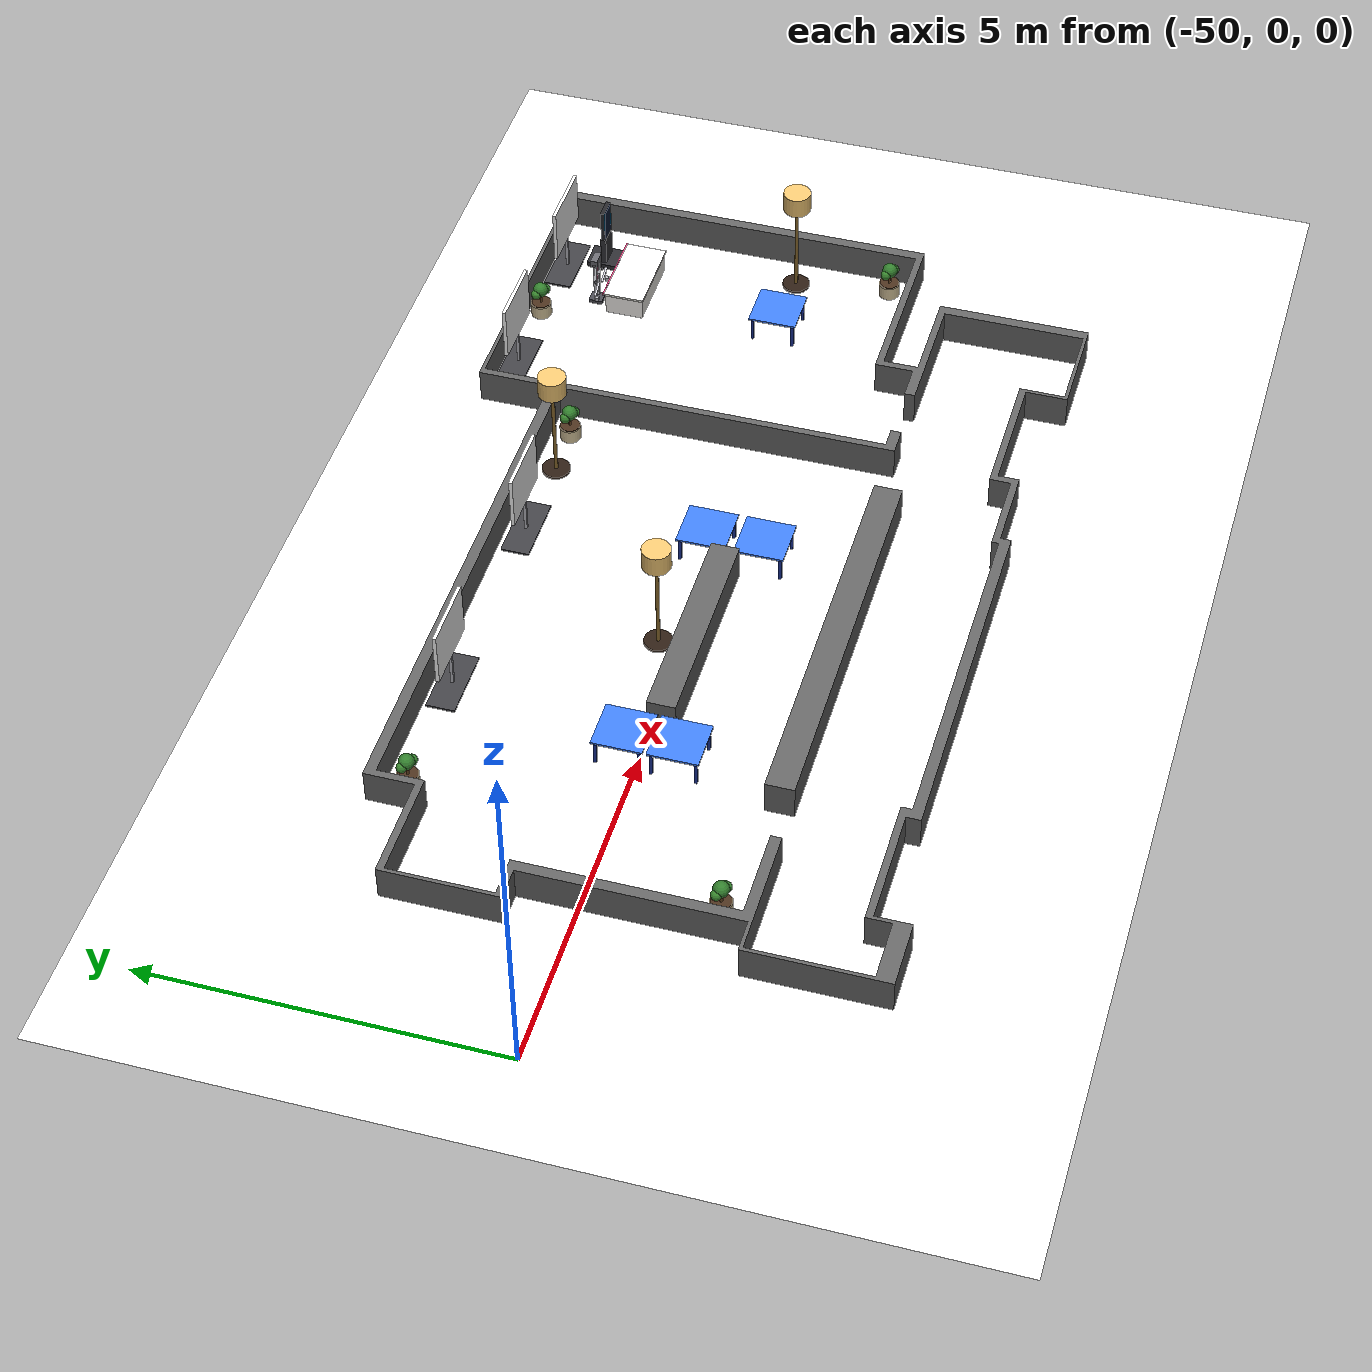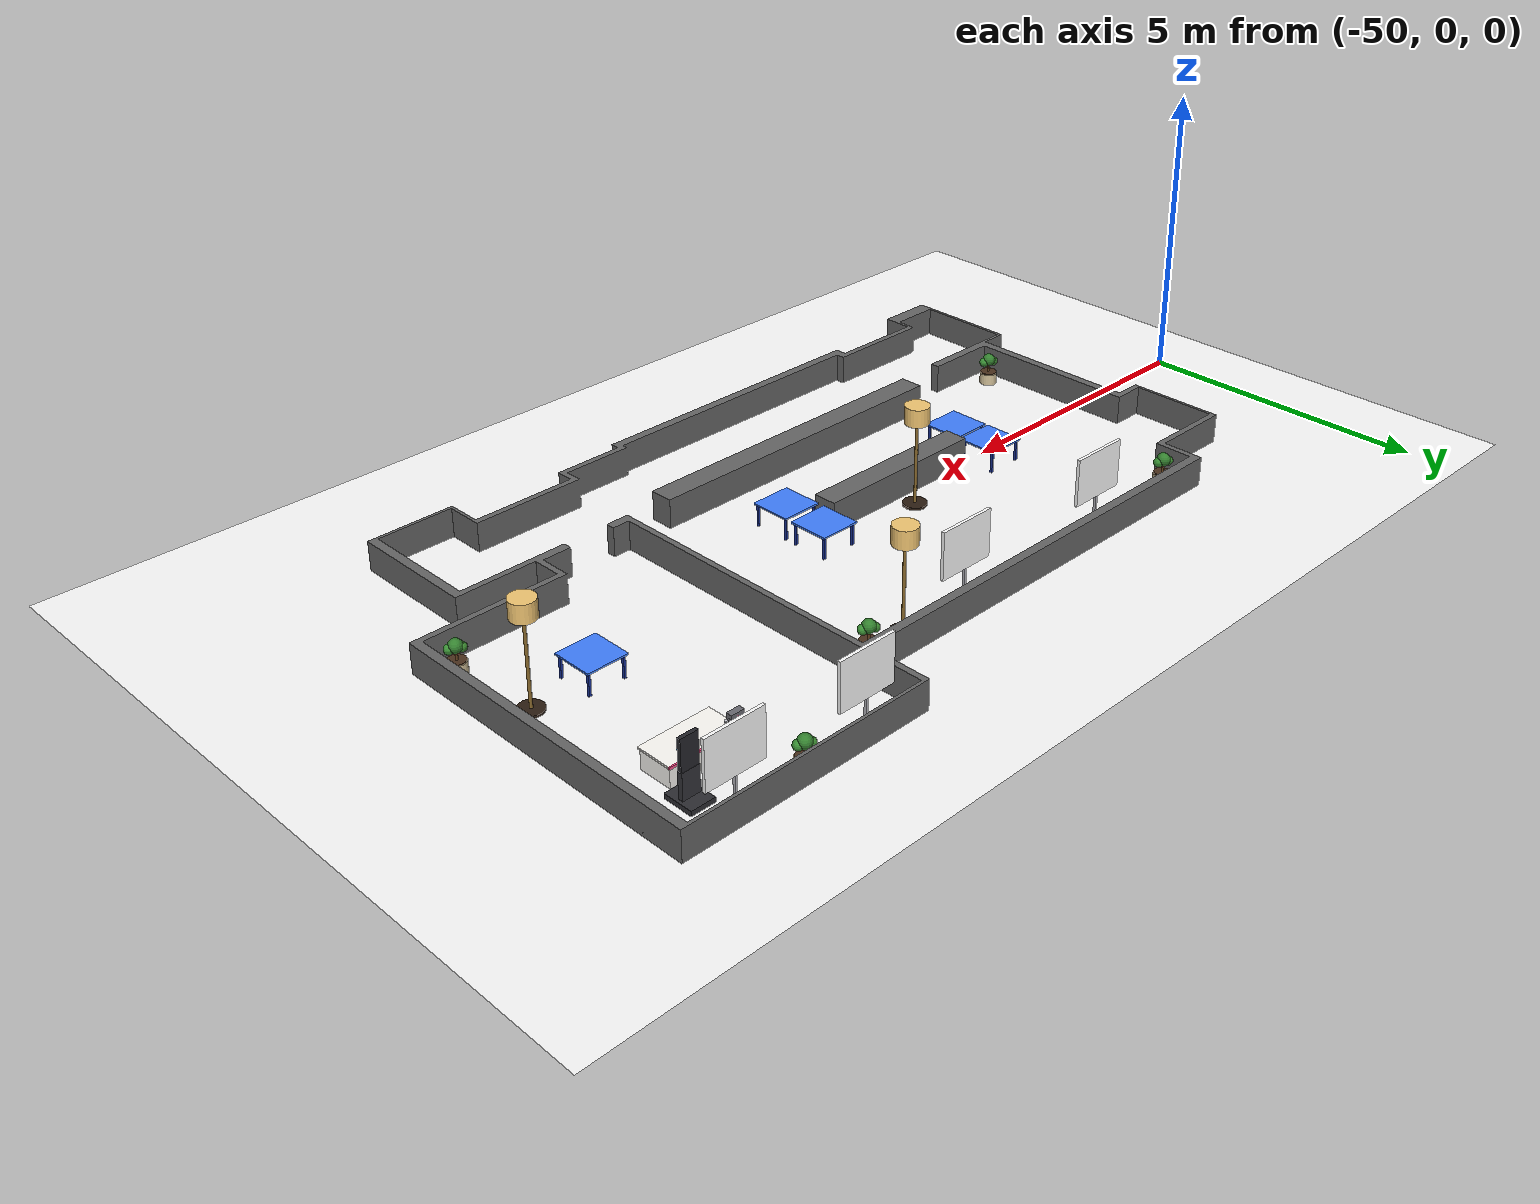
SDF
<?xml version="1.0" ?>
<sdf version="1.7">
  <world name="mapv5_moca">
    <plugin filename="gz-sim-physics-system" name="gz::sim::systems::Physics"/>
    <plugin filename="gz-sim-sensors-system" name="gz::sim::systems::Sensors">
      <render_engine>ogre2</render_engine>
    </plugin>
    <plugin filename="gz-sim-user-commands-system" name="gz::sim::systems::UserCommands"/>
    <plugin filename="gz-sim-scene-broadcaster-system" name="gz::sim::systems::SceneBroadcaster"/>
    <plugin filename="gz-sim-imu-system" name="gz::sim::systems::Imu"/>

    <scene>
      <ambient>0.5 0.5 0.5 1</ambient>
      <background>0.8 0.8 0.8</background>
      <grid>false</grid>
    </scene>

    <gui fullscreen="0">
      <plugin filename="MinimalScene" name="3D View">
        <gz-gui>
          <title>3D View</title>
          <property type="bool" key="showTitleBar">false</property>
          <property type="string" key="state">docked</property>
        </gz-gui>
        <ambient_light>0.5 0.5 0.5</ambient_light>
        <background_color>0.8 0.8 0.8</background_color>
        <camera_pose>-41.545 -0.374 18 0 1.5708 0</camera_pose>
        <camera_clip>
          <near>0.25</near>
          <far>250</far>
        </camera_clip>
        <engine>ogre2</engine>
        <scene>scene</scene>
        <sky>true</sky>
      </plugin>

      <plugin filename="GzSceneManager" name="Scene Manager">
        <gz-gui>
          <property key="resizable" type="bool">false</property>
          <property key="width" type="double">5</property>
          <property key="height" type="double">5</property>
          <property key="state" type="string">floating</property>
          <property key="showTitleBar" type="bool">false</property>
        </gz-gui>
      </plugin>

      <plugin filename="InteractiveViewControl" name="Interactive view control">
        <gz-gui>
          <property key="resizable" type="bool">false</property>
          <property key="width" type="double">5</property>
          <property key="height" type="double">5</property>
          <property key="state" type="string">floating</property>
          <property key="showTitleBar" type="bool">false</property>
        </gz-gui>
      </plugin>

      <plugin filename="CameraTracking" name="Camera Tracking">
        <gz-gui>
          <property key="resizable" type="bool">false</property>
          <property key="width" type="double">5</property>
          <property key="height" type="double">5</property>
          <property key="state" type="string">floating</property>
          <property key="showTitleBar" type="bool">false</property>
        </gz-gui>
      </plugin>

      <plugin filename="MarkerManager" name="Marker manager">
        <gz-gui>
          <property key="resizable" type="bool">false</property>
          <property key="width" type="double">5</property>
          <property key="height" type="double">5</property>
          <property key="state" type="string">floating</property>
          <property key="showTitleBar" type="bool">false</property>
        </gz-gui>
      </plugin>

      <plugin filename="SelectEntities" name="Select Entities">
        <gz-gui>
          <property key="resizable" type="bool">false</property>
          <property key="width" type="double">5</property>
          <property key="height" type="double">5</property>
          <property key="state" type="string">floating</property>
          <property key="showTitleBar" type="bool">false</property>
        </gz-gui>
      </plugin>

      <plugin filename="Spawn" name="Spawn Entities">
        <gz-gui>
          <property key="resizable" type="bool">false</property>
          <property key="width" type="double">5</property>
          <property key="height" type="double">5</property>
          <property key="state" type="string">floating</property>
          <property key="showTitleBar" type="bool">false</property>
        </gz-gui>
      </plugin>

      <plugin filename="VisualizationCapabilities" name="Visualization Capabilities">
        <gz-gui>
          <property key="resizable" type="bool">false</property>
          <property key="width" type="double">5</property>
          <property key="height" type="double">5</property>
          <property key="state" type="string">floating</property>
          <property key="showTitleBar" type="bool">false</property>
        </gz-gui>
      </plugin>

      <plugin filename="WorldControl" name="World control">
        <gz-gui>
          <title>World control</title>
          <property type="bool" key="showTitleBar">false</property>
          <property type="bool" key="resizable">false</property>
          <property type="double" key="height">72</property>
          <property type="double" key="width">121</property>
          <property type="double" key="z">1</property>
          <property type="string" key="state">floating</property>
          <anchors target="3D View">
            <line own="left" target="left"/>
            <line own="bottom" target="bottom"/>
          </anchors>
        </gz-gui>
        <play_pause>true</play_pause>
        <step>true</step>
        <start_paused>false</start_paused>
        <service>/world/mapv5_moca/control</service>
        <stats_topic>/world/mapv5_moca/stats</stats_topic>
      </plugin>

      <plugin filename="WorldStats" name="World stats">
        <gz-gui>
          <title>World stats</title>
          <property type="bool" key="showTitleBar">false</property>
          <property type="bool" key="resizable">false</property>
          <property type="double" key="height">110</property>
          <property type="double" key="width">290</property>
          <property type="double" key="z">1</property>
          <property type="string" key="state">floating</property>
          <anchors target="3D View">
            <line own="right" target="right"/>
            <line own="bottom" target="bottom"/>
          </anchors>
        </gz-gui>
        <sim_time>true</sim_time>
        <real_time>true</real_time>
        <real_time_factor>true</real_time_factor>
        <iterations>true</iterations>
        <topic>/world/mapv5_moca/stats</topic>
      </plugin>

      <plugin filename="EntityTree" name="Entity tree"/>
    </gui>

    <light type="directional" name="sun">
      <cast_shadows>true</cast_shadows>
      <pose>-41.545 -0.374 10 0 0 0</pose>
      <diffuse>1 1 1 1</diffuse>
      <specular>0.2 0.2 0.2 1</specular>
      <attenuation>
        <range>1000</range>
        <constant>0.09</constant>
        <linear>0.001</linear>
        <quadratic>0.001</quadratic>
      </attenuation>
      <direction>-0.3 -0.3 -0.9</direction>
    </light>

    <light type="point" name="lamp_main_1">
      <pose>-48.625 -0.025 2.5 0 0 0</pose>
      <diffuse>0.95 0.92 0.85 1</diffuse>
      <specular>0.1 0.1 0.1 1</specular>
      <attenuation>
        <range>12</range>
        <constant>0.5</constant>
        <linear>0.05</linear>
        <quadratic>0.005</quadratic>
      </attenuation>
      <cast_shadows>false</cast_shadows>
    </light>

    <light type="point" name="lamp_main_2">
      <pose>-39.625 2.975 2.5 0 0 0</pose>
      <diffuse>0.95 0.92 0.85 1</diffuse>
      <specular>0.1 0.1 0.1 1</specular>
      <attenuation>
        <range>12</range>
        <constant>0.5</constant>
        <linear>0.05</linear>
        <quadratic>0.005</quadratic>
      </attenuation>
      <cast_shadows>false</cast_shadows>
    </light>

    <include>
      <name>L01</name>
      <uri>model://floor_lamp</uri>
      <pose>-35.300 0.526 0 0 0 0</pose>
    </include>

    <!-- floor 19.55 x 12.50 m, light gray dotted grid PBR texture -->
    <include>
      <uri>model://floor_grid</uri>
      <pose>-41.545 -0.374 -0.01 0 0 0</pose>
    </include>

    <include>
      <uri>model://mapv5</uri>
      <pose>-51.320 -6.624 0 0 0 0</pose>
    </include>

    <!-- bar_counter (yaml: prep_station) - 카운터 + OpenARM 베이스 -->
    <include>
      <name>bar_counter</name>
      <uri>model://bar_counter</uri>
      <pose>-36.070 2.793 0 0 0 3.142</pose>
    </include>

    <!-- OpenARM - bar_counter 옆, floor 위 직립 (z=0.89 = 카운터 상판 위) -->
    <include>
      <name>open_arm</name>
      <uri>model://open_arm</uri>
      <pose>-36.420 3.276 0 0 0 3.142</pose>
    </include>

    <!-- kiosk - 셀프 주문 단말 (+x 방향 = 화면면, yaml 동기화) -->
    <include>
      <name>kiosk</name>
      <uri>model://kiosk</uri>
      <pose>-35.520 3.409 0 0 0 -1.571</pose>
    </include>

    <!-- vicpinky_home - 모델 미신설, 좌표만 기록 (후속: dock plate 모델)
         pose: x=-36.920 y=2.843 yaw=-1.570
    -->

    <!-- 고객 테이블 T01~T05 - cafe_layout.yaml (yaw=0 통일, waypoint heading 후속 도출) -->
    <include>
      <name>T01</name>
      <uri>model://cafe_table</uri>
      <pose>-36.337 0.526 0 0 0 0</pose>
    </include>
    <include>
      <name>T02</name>
      <uri>model://cafe_table</uri>
      <pose>-41.037 0.243 0 0 0 0</pose>
    </include>
    <include>
      <name>T03</name>
      <uri>model://cafe_table</uri>
      <pose>-41.037 -0.574 0 0 0 0</pose>
    </include>
    <include>
      <name>T04</name>
      <uri>model://cafe_table</uri>
      <pose>-44.903 0.243 0 0 0 0</pose>
    </include>
    <include>
      <name>T05</name>
      <uri>model://cafe_table</uri>
      <pose>-44.903 -0.507 0 0 0 0</pose>
    </include>

    <!-- 광고 배너 B01~B04 — roll-up 자립 (+x = 광고면). cafe_layout.yaml banners 섹션 동기화 -->
    <include>
      <name>B01</name>
      <uri>model://banner</uri>
      <pose>-38.053 3.959 0 0 0 -1.571</pose>
    </include>
    <include>
      <name>B02</name>
      <uri>model://banner</uri>
      <pose>-35.787 3.943 0 0 0 -1.571</pose>
    </include>
    <include>
      <name>B03</name>
      <uri>model://banner</uri>
      <pose>-41.353 2.759 0 0 0 -1.571</pose>
    </include>
    <include>
      <name>B04</name>
      <uri>model://banner</uri>
      <pose>-44.387 2.776 0 0 0 -1.571</pose>
    </include>

    <!-- 스탠드형 전등 추가 L02~L03 — picker 배치 동기화 (L01 은 위에 별도) -->
    <include>
      <name>L02</name>
      <uri>model://floor_lamp</uri>
      <pose>-40.103 2.726 0 0 0 3.142</pose>
    </include>
    <include>
      <name>L03</name>
      <uri>model://floor_lamp</uri>
      <pose>-42.937 0.376 0 0 0 3.142</pose>
    </include>

    <!-- 분재 P01~P05 — picker 배치 동기화. cafe_layout.yaml plants 섹션 -->
    <include>
      <name>P01</name>
      <uri>model://bonsai_tree</uri>
      <pose>-39.387 2.743 0 0 0 3.142</pose>
    </include>
    <include>
      <name>P02</name>
      <uri>model://bonsai_tree</uri>
      <pose>-46.237 2.726 0 0 0 3.142</pose>
    </include>
    <include>
      <name>P03</name>
      <uri>model://bonsai_tree</uri>
      <pose>-47.170 -1.707 0 0 0 3.142</pose>
    </include>
    <include>
      <name>P04</name>
      <uri>model://bonsai_tree</uri>
      <pose>-35.120 -0.857 0 0 0 3.142</pose>
    </include>
    <include>
      <name>P05</name>
      <uri>model://bonsai_tree</uri>
      <pose>-36.937 3.976 0 0 0 3.142</pose>
    </include>

  </world>
</sdf>

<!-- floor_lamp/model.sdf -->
<sdf version="1.7">
  <model name="floor_lamp">
    <static>true</static>
    <!-- 스탠드형 카페 전등. 베이스 + 브래스 폴 + 따뜻한 갓 + 갓 안 point light.
         total height ~1.74m. collision: 베이스 + 폴만. -->

    <link name="base">
      <pose>0 0 0.020 0 0 0</pose>
      <visual name="v">
        <geometry><cylinder><radius>0.200</radius><length>0.040</length></cylinder></geometry>
        <material>
          <ambient>0.10 0.07 0.05 1</ambient>
          <diffuse>0.18 0.12 0.08 1</diffuse>
          <specular>0.20 0.20 0.20 1</specular>
        </material>
      </visual>
      <collision name="c">
        <geometry><cylinder><radius>0.200</radius><length>0.040</length></cylinder></geometry>
      </collision>
    </link>

    <link name="pole">
      <pose>0 0 0.740 0 0 0</pose>
      <visual name="v">
        <geometry><cylinder><radius>0.025</radius><length>1.400</length></cylinder></geometry>
        <material>
          <ambient>0.30 0.22 0.10 1</ambient>
          <diffuse>0.55 0.42 0.18 1</diffuse>
          <specular>0.60 0.55 0.40 1</specular>
        </material>
      </visual>
      <collision name="c">
        <geometry><cylinder><radius>0.025</radius><length>1.400</length></cylinder></geometry>
      </collision>
    </link>

    <link name="shade">
      <pose>0 0 1.590 0 0 0</pose>
      <visual name="v">
        <geometry><cylinder><radius>0.200</radius><length>0.300</length></cylinder></geometry>
        <material>
          <ambient>0.55 0.40 0.20 1</ambient>
          <diffuse>0.95 0.78 0.45 1</diffuse>
          <specular>0.20 0.18 0.10 1</specular>
          <emissive>0.30 0.22 0.10 1</emissive>
        </material>
      </visual>
      <light type="point" name="bulb">
        <pose>0 0 0.050 0 0 0</pose>
        <diffuse>1.00 0.85 0.60 1</diffuse>
        <specular>0.20 0.18 0.12 1</specular>
        <attenuation>
          <range>5</range>
          <constant>0.4</constant>
          <linear>0.20</linear>
          <quadratic>0.10</quadratic>
        </attenuation>
        <cast_shadows>false</cast_shadows>
      </light>
    </link>
  </model>
</sdf>

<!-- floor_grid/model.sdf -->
<!--
  floor_grid — 19.55 x 12.50 m 카페 바닥.
  2026-05-15: 단일 stretched box → OBJ 메쉬 (UV 1 m 타일) 전환.
              bottom.png 가 1 m 당 한 번 반복되어 stretch 없이 약 20x12 회 타일링.
  충돌은 가벼운 box 그대로 유지.
-->
<sdf version="1.7">
  <model name="floor_grid">
    <static>true</static>
    <link name="floor_link">
      <visual name="floor_visual">
        <geometry>
          <mesh>
            <uri>model://floor_grid/meshes/floor_plane.obj</uri>
          </mesh>
        </geometry>
        <material>
          <ambient>0.95 0.95 0.95 1</ambient>
          <diffuse>0.99 0.99 0.99 1</diffuse>
          <specular>0.05 0.05 0.05 1</specular>
          <pbr>
            <metal>
              <albedo_map>model://floor_grid/textures/bottom.png</albedo_map>
            </metal>
          </pbr>
        </material>
      </visual>
      <collision name="floor_collision">
        <geometry>
          <box>
            <size>19.55 12.50 0.02</size>
          </box>
        </geometry>
      </collision>
    </link>
  </model>
</sdf>

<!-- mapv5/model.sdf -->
<sdf version="1.7">
  <model name="mapv5">
    <static>true</static>
    <link name="walls_high">
      <visual name="walls_high_visual">
        <geometry>
          <mesh>
            <uri>model://mapv5/meshes/walls_high.stl</uri>
            <scale>1 1 0.25</scale>
          </mesh>
        </geometry>
        <material>
          <ambient>0.30 0.30 0.30 1</ambient>
          <diffuse>0.40 0.40 0.40 1</diffuse>
          <specular>0.1 0.1 0.1 1</specular>
        </material>
      </visual>
      <collision name="walls_high_collision">
        <geometry>
          <mesh>
            <uri>model://mapv5/meshes/walls_high.stl</uri>
            <scale>1 1 0.25</scale>
          </mesh>
        </geometry>
        <surface>
          <contact>
            <collide_bitmask>0x01</collide_bitmask>
          </contact>
        </surface>
      </collision>
    </link>
  </model>
</sdf>

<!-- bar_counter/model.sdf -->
<sdf version="1.7">
  <model name="bar_counter">
    <static>true</static>
    <!-- bar counter - 1.2m x 0.6m x 0.35m. white body + white top + pink accent strip -->

    <!-- top: 1.2x0.6x0.03, top surface z=0.35. cream white -->
    <link name="counter_top">
      <pose>0 0 0.335 0 0 0</pose>
      <visual name="top_visual">
        <geometry>
          <box><size>1.2 0.6 0.03</size></box>
        </geometry>
        <material>
          <ambient>0.97 0.96 0.94 1</ambient>
          <diffuse>1.0 0.99 0.97 1</diffuse>
          <specular>0.25 0.25 0.25 1</specular>
        </material>
      </visual>
      <collision name="top_collision">
        <geometry>
          <box><size>1.2 0.6 0.03</size></box>
        </geometry>
      </collision>
    </link>

    <!-- body: 1.16x0.56x0.32. cream white -->
    <link name="counter_body">
      <pose>0 0 0.16 0 0 0</pose>
      <visual name="body_visual">
        <geometry>
          <box><size>1.16 0.56 0.32</size></box>
        </geometry>
        <material>
          <ambient>0.94 0.93 0.91 1</ambient>
          <diffuse>0.99 0.98 0.96 1</diffuse>
          <specular>0.18 0.18 0.18 1</specular>
        </material>
      </visual>
      <collision name="body_collision">
        <geometry>
          <box><size>1.16 0.56 0.32</size></box>
        </geometry>
      </collision>
    </link>

    <!-- accent strip - 1.2x0.02x0.04, front edge. deeper pink for contrast against body -->
    <link name="pink_strip">
      <pose>0 -0.305 0.335 0 0 0</pose>
      <visual name="strip_visual">
        <geometry>
          <box><size>1.2 0.02 0.04</size></box>
        </geometry>
        <material>
          <ambient>0.95 0.20 0.45 1</ambient>
          <diffuse>1.0 0.30 0.55 1</diffuse>
          <specular>0.3 0.3 0.3 1</specular>
          <emissive>0.05 0.02 0.03 1</emissive>
        </material>
      </visual>
    </link>
  </model>
</sdf>

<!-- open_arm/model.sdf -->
<sdf version="1.7">
  <model name="open_arm">
    <static>true</static>

    <!-- base pad - dark gray, 0.20 x 0.20 x 0.06 -->
    <link name="base_pad">
      <pose>0 0 0.030 0 0 0</pose>
      <visual name="v">
        <geometry><box><size>0.20 0.20 0.06</size></box></geometry>
        <material>
          <ambient>0.22 0.22 0.24 1</ambient>
          <diffuse>0.30 0.30 0.33 1</diffuse>
          <specular>0.35 0.35 0.35 1</specular>
        </material>
      </visual>
      <collision name="c"><geometry><box><size>0.20 0.20 0.06</size></box></geometry></collision>
    </link>

    <!-- LEFT column - aluminum silver, 0.04 x 0.04 x 0.63 -->
    <link name="col_left">
      <pose>-0.07 0 0.375 0 0 0</pose>
      <visual name="v">
        <geometry><box><size>0.04 0.04 0.63</size></box></geometry>
        <material>
          <ambient>0.65 0.65 0.68 1</ambient>
          <diffuse>0.80 0.80 0.83 1</diffuse>
          <specular>0.6 0.6 0.6 1</specular>
        </material>
      </visual>
    </link>
    <!-- RIGHT column -->
    <link name="col_right">
      <pose>0.07 0 0.375 0 0 0</pose>
      <visual name="v">
        <geometry><box><size>0.04 0.04 0.63</size></box></geometry>
        <material>
          <ambient>0.65 0.65 0.68 1</ambient>
          <diffuse>0.80 0.80 0.83 1</diffuse>
          <specular>0.6 0.6 0.6 1</specular>
        </material>
      </visual>
    </link>

    <!-- pink mid strips - 3 horizontal accents between columns -->
    <link name="strip_low">
      <pose>0 0 0.240 0 0 0</pose>
      <visual name="v">
        <geometry><box><size>0.14 0.012 0.06</size></box></geometry>
        <material>
          <ambient>0.95 0.40 0.60 1</ambient>
          <diffuse>1.0 0.55 0.72 1</diffuse>
          <emissive>0.06 0.02 0.04 1</emissive>
        </material>
      </visual>
    </link>
    <link name="strip_mid">
      <pose>0 0 0.390 0 0 0</pose>
      <visual name="v">
        <geometry><box><size>0.14 0.012 0.06</size></box></geometry>
        <material>
          <ambient>0.95 0.40 0.60 1</ambient>
          <diffuse>1.0 0.55 0.72 1</diffuse>
          <emissive>0.06 0.02 0.04 1</emissive>
        </material>
      </visual>
    </link>
    <link name="strip_high">
      <pose>0 0 0.540 0 0 0</pose>
      <visual name="v">
        <geometry><box><size>0.14 0.012 0.06</size></box></geometry>
        <material>
          <ambient>0.95 0.40 0.60 1</ambient>
          <diffuse>1.0 0.55 0.72 1</diffuse>
          <emissive>0.06 0.02 0.04 1</emissive>
        </material>
      </visual>
    </link>

    <!-- shoulder block - dark gray top housing, 0.22 x 0.10 x 0.12 -->
    <link name="shoulder_block">
      <pose>0 0 0.750 0 0 0</pose>
      <visual name="v">
        <geometry><box><size>0.22 0.10 0.12</size></box></geometry>
        <material>
          <ambient>0.28 0.28 0.30 1</ambient>
          <diffuse>0.42 0.42 0.45 1</diffuse>
          <specular>0.4 0.4 0.4 1</specular>
        </material>
      </visual>
      <collision name="c"><geometry><box><size>0.22 0.10 0.12</size></box></geometry></collision>
    </link>

    <!-- PinkLAB logo accent on shoulder - small pink dot front -->
    <link name="shoulder_logo">
      <pose>0 -0.051 0.750 0 0 0</pose>
      <visual name="v">
        <geometry><cylinder><radius>0.015</radius><length>0.005</length></cylinder></geometry>
        <pose>0 0 0 1.5708 0 0</pose>
        <material>
          <ambient>0.95 0.40 0.60 1</ambient>
          <diffuse>1.0 0.55 0.72 1</diffuse>
          <emissive>0.10 0.04 0.06 1</emissive>
        </material>
      </visual>
    </link>

    <!-- LEFT arm - hanging from shoulder, slanted forward -->
    <link name="left_shoulder_joint">
      <pose>-0.10 0 0.720 0 0 0</pose>
      <visual name="v">
        <geometry><sphere><radius>0.025</radius></sphere></geometry>
        <material>
          <ambient>0.20 0.20 0.22 1</ambient>
          <diffuse>0.30 0.30 0.32 1</diffuse>
        </material>
      </visual>
    </link>
    <link name="left_upper">
      <pose>-0.10 0.02 0.600 0 -0.35 0</pose>
      <visual name="v">
        <geometry><box><size>0.035 0.035 0.27</size></box></geometry>
        <material>
          <ambient>0.65 0.65 0.68 1</ambient>
          <diffuse>0.80 0.80 0.83 1</diffuse>
          <specular>0.6 0.6 0.6 1</specular>
        </material>
      </visual>
    </link>
    <link name="left_elbow">
      <pose>-0.16 0.04 0.465 0 0 0</pose>
      <visual name="v">
        <geometry><sphere><radius>0.022</radius></sphere></geometry>
        <material>
          <ambient>0.20 0.20 0.22 1</ambient>
          <diffuse>0.30 0.30 0.32 1</diffuse>
        </material>
      </visual>
    </link>
    <link name="left_forearm">
      <pose>-0.17 0.06 0.345 0 -1.2 0</pose>
      <visual name="v">
        <geometry><box><size>0.030 0.030 0.24</size></box></geometry>
        <material>
          <ambient>0.65 0.65 0.68 1</ambient>
          <diffuse>0.80 0.80 0.83 1</diffuse>
          <specular>0.6 0.6 0.6 1</specular>
        </material>
      </visual>
    </link>
    <link name="left_gripper">
      <pose>-0.24 0.08 0.225 0 0 0</pose>
      <visual name="v">
        <geometry><box><size>0.05 0.04 0.06</size></box></geometry>
        <material>
          <ambient>0.55 0.55 0.58 1</ambient>
          <diffuse>0.75 0.75 0.78 1</diffuse>
          <specular>0.5 0.5 0.5 1</specular>
        </material>
      </visual>
    </link>

    <!-- RIGHT arm - mirror -->
    <link name="right_shoulder_joint">
      <pose>0.10 0 0.720 0 0 0</pose>
      <visual name="v">
        <geometry><sphere><radius>0.025</radius></sphere></geometry>
        <material>
          <ambient>0.20 0.20 0.22 1</ambient>
          <diffuse>0.30 0.30 0.32 1</diffuse>
        </material>
      </visual>
    </link>
    <link name="right_upper">
      <pose>0.10 0.02 0.600 0 -0.35 0</pose>
      <visual name="v">
        <geometry><box><size>0.035 0.035 0.27</size></box></geometry>
        <material>
          <ambient>0.65 0.65 0.68 1</ambient>
          <diffuse>0.80 0.80 0.83 1</diffuse>
          <specular>0.6 0.6 0.6 1</specular>
        </material>
      </visual>
    </link>
    <link name="right_elbow">
      <pose>0.16 0.04 0.465 0 0 0</pose>
      <visual name="v">
        <geometry><sphere><radius>0.022</radius></sphere></geometry>
        <material>
          <ambient>0.20 0.20 0.22 1</ambient>
          <diffuse>0.30 0.30 0.32 1</diffuse>
        </material>
      </visual>
    </link>
    <link name="right_forearm">
      <pose>0.17 0.06 0.345 0 -1.2 0</pose>
      <visual name="v">
        <geometry><box><size>0.030 0.030 0.24</size></box></geometry>
        <material>
          <ambient>0.65 0.65 0.68 1</ambient>
          <diffuse>0.80 0.80 0.83 1</diffuse>
          <specular>0.6 0.6 0.6 1</specular>
        </material>
      </visual>
    </link>
    <link name="right_gripper">
      <pose>0.24 0.08 0.225 0 0 0</pose>
      <visual name="v">
        <geometry><box><size>0.05 0.04 0.06</size></box></geometry>
        <material>
          <ambient>0.55 0.55 0.58 1</ambient>
          <diffuse>0.75 0.75 0.78 1</diffuse>
          <specular>0.5 0.5 0.5 1</specular>
        </material>
      </visual>
    </link>
  </model>
</sdf>

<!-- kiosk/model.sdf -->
<sdf version="1.7">
  <model name="kiosk">
    <static>true</static>

    <!-- 1) 베이스 슬랩 -->
    <link name="base">
      <pose>0 0 0.040 0 0 0</pose>
      <visual name="base_visual">
        <geometry>
          <box><size>0.500 0.400 0.080</size></box>
        </geometry>
        <material>
          <ambient>0.10 0.10 0.12 1</ambient>
          <diffuse>0.18 0.18 0.20 1</diffuse>
          <specular>0.25 0.25 0.25 1</specular>
        </material>
      </visual>
      <collision name="base_collision">
        <geometry>
          <box><size>0.500 0.400 0.080</size></box>
        </geometry>
      </collision>
    </link>

    <!-- 2) 수직 컬럼 -->
    <link name="column">
      <pose>0 0 0.290 0 0 0</pose>
      <visual name="column_visual">
        <geometry>
          <box><size>0.080 0.300 0.420</size></box>
        </geometry>
        <material>
          <ambient>0.12 0.12 0.14 1</ambient>
          <diffuse>0.20 0.20 0.22 1</diffuse>
          <specular>0.30 0.30 0.30 1</specular>
        </material>
      </visual>
      <collision name="column_collision">
        <geometry>
          <box><size>0.080 0.300 0.420</size></box>
        </geometry>
      </collision>
    </link>

    <!-- 3) 상단 하우징 — portrait 디스플레이 외곽 (top z=1.0) -->
    <link name="housing">
      <pose>0 0 0.750 0 0 0</pose>
      <visual name="housing_visual">
        <geometry>
          <box><size>0.060 0.300 0.500</size></box>
        </geometry>
        <material>
          <ambient>0.08 0.08 0.10 1</ambient>
          <diffuse>0.15 0.15 0.17 1</diffuse>
          <specular>0.20 0.20 0.20 1</specular>
        </material>
      </visual>
      <collision name="housing_collision">
        <geometry>
          <box><size>0.060 0.300 0.500</size></box>
        </geometry>
      </collision>
    </link>

    <!-- 4) 디스플레이면 — 세로형 단색 다크 네이비 -->
    <link name="screen">
      <pose>0.033 0 0.750 0 0 0</pose>
      <visual name="screen_visual">
        <geometry>
          <box><size>0.005 0.260 0.460</size></box>
        </geometry>
        <material>
          <ambient>0.02 0.04 0.10 1</ambient>
          <diffuse>0.04 0.10 0.22 1</diffuse>
          <specular>0.40 0.40 0.50 1</specular>
          <emissive>0.05 0.15 0.30 1</emissive>
        </material>
      </visual>
    </link>

    <!-- 5) 화면 베젤 — 좌우 시안 글로우 스트립 (portrait 높이 0.46 매칭) -->
    <link name="bezel_left">
      <pose>0.033 0.140 0.750 0 0 0</pose>
      <visual name="bezel_l_visual">
        <geometry>
          <box><size>0.006 0.012 0.480</size></box>
        </geometry>
        <material>
          <ambient>0.00 0.30 0.45 1</ambient>
          <diffuse>0.00 0.50 0.75 1</diffuse>
          <specular>0.20 0.40 0.50 1</specular>
          <emissive>0.00 0.80 1.00 1</emissive>
        </material>
      </visual>
    </link>
    <link name="bezel_right">
      <pose>0.033 -0.140 0.750 0 0 0</pose>
      <visual name="bezel_r_visual">
        <geometry>
          <box><size>0.006 0.012 0.480</size></box>
        </geometry>
        <material>
          <ambient>0.00 0.30 0.45 1</ambient>
          <diffuse>0.00 0.50 0.75 1</diffuse>
          <specular>0.20 0.40 0.50 1</specular>
          <emissive>0.00 0.80 1.00 1</emissive>
        </material>
      </visual>
    </link>
  </model>
</sdf>

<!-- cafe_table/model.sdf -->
<sdf version="1.7">
  <model name="cafe_table">
    <static>true</static>
    <!-- cafe table - 0.7m x 0.7m x 0.40m (top surface) -->

    <!-- top: 0.7x0.7x0.03, top surface z=0.40. light steel blue -->
    <link name="top">
      <pose>0 0 0.385 0 0 0</pose>
      <visual name="top_visual">
        <geometry>
          <box><size>0.7 0.7 0.03</size></box>
        </geometry>
        <material>
          <ambient>0.15 0.35 0.85 1</ambient>
          <diffuse>0.25 0.50 1.00 1</diffuse>
          <specular>0.25 0.25 0.30 1</specular>
        </material>
      </visual>
      <collision name="top_collision">
        <geometry>
          <box><size>0.7 0.7 0.03</size></box>
        </geometry>
      </collision>
    </link>

    <!-- 4 legs - 0.04x0.04x0.37, navy blue metal -->
    <link name="leg_fl">
      <pose>0.3 0.3 0.185 0 0 0</pose>
      <visual name="v"><geometry><box><size>0.04 0.04 0.37</size></box></geometry>
        <material>
          <ambient>0.05 0.10 0.45 1</ambient>
          <diffuse>0.10 0.20 0.60 1</diffuse>
          <specular>0.30 0.30 0.40 1</specular>
        </material>
      </visual>
      <collision name="c"><geometry><box><size>0.04 0.04 0.37</size></box></geometry></collision>
    </link>
    <link name="leg_fr">
      <pose>0.3 -0.3 0.185 0 0 0</pose>
      <visual name="v"><geometry><box><size>0.04 0.04 0.37</size></box></geometry>
        <material>
          <ambient>0.05 0.10 0.45 1</ambient>
          <diffuse>0.10 0.20 0.60 1</diffuse>
          <specular>0.30 0.30 0.40 1</specular>
        </material>
      </visual>
      <collision name="c"><geometry><box><size>0.04 0.04 0.37</size></box></geometry></collision>
    </link>
    <link name="leg_bl">
      <pose>-0.3 0.3 0.185 0 0 0</pose>
      <visual name="v"><geometry><box><size>0.04 0.04 0.37</size></box></geometry>
        <material>
          <ambient>0.05 0.10 0.45 1</ambient>
          <diffuse>0.10 0.20 0.60 1</diffuse>
          <specular>0.30 0.30 0.40 1</specular>
        </material>
      </visual>
      <collision name="c"><geometry><box><size>0.04 0.04 0.37</size></box></geometry></collision>
    </link>
    <link name="leg_br">
      <pose>-0.3 -0.3 0.185 0 0 0</pose>
      <visual name="v"><geometry><box><size>0.04 0.04 0.37</size></box></geometry>
        <material>
          <ambient>0.05 0.10 0.45 1</ambient>
          <diffuse>0.10 0.20 0.60 1</diffuse>
          <specular>0.30 0.30 0.40 1</specular>
        </material>
      </visual>
      <collision name="c"><geometry><box><size>0.04 0.04 0.37</size></box></geometry></collision>
    </link>
  </model>
</sdf>

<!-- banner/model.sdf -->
<sdf version="1.7">
  <model name="banner">
    <static>true</static>

    <!-- 1) 베이스 풋 (얇은 직사각 판, 안정성) -->
    <link name="foot">
      <pose>0 0 0.015 0 0 0</pose>
      <visual name="foot_visual">
        <geometry>
          <box><size>0.400 1.000 0.030</size></box>
        </geometry>
        <material>
          <ambient>0.18 0.18 0.20 1</ambient>
          <diffuse>0.26 0.26 0.28 1</diffuse>
          <specular>0.20 0.20 0.20 1</specular>
        </material>
      </visual>
      <collision name="foot_collision">
        <geometry>
          <box><size>0.400 1.000 0.030</size></box>
        </geometry>
      </collision>
    </link>

    <!-- 2) 중앙 마스트 (실버 알루미늄, 패널 받침) -->
    <link name="mast">
      <pose>0 0 0.280 0 0 0</pose>
      <visual name="mast_visual">
        <geometry>
          <box><size>0.040 0.040 0.500</size></box>
        </geometry>
        <material>
          <ambient>0.55 0.55 0.58 1</ambient>
          <diffuse>0.72 0.72 0.75 1</diffuse>
          <specular>0.55 0.55 0.55 1</specular>
        </material>
      </visual>
      <collision name="mast_collision">
        <geometry>
          <box><size>0.040 0.040 0.500</size></box>
        </geometry>
      </collision>
    </link>

    <!-- 3) 상단 패널 — 광고 텍스처. thin in X, 광고면 = +x. -->
    <link name="panel">
      <pose>0 0 0.925 0 0 0</pose>
      <visual name="panel_visual">
        <geometry>
          <box><size>0.050 1.000 0.790</size></box>
        </geometry>
        <material>
          <ambient>0.85 0.85 0.85 1</ambient>
          <diffuse>1.00 1.00 1.00 1</diffuse>
          <specular>0.10 0.10 0.10 1</specular>
          <pbr>
            <metal>
              <albedo_map>model://banner/materials/textures/mocanewdesign.png</albedo_map>
              <metalness>0.0</metalness>
              <roughness>0.80</roughness>
            </metal>
          </pbr>
        </material>
      </visual>
    </link>
  </model>
</sdf>

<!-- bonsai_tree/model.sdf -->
<sdf version="1.7">
  <model name="bonsai_tree">
    <static>true</static>
    <!-- 카페 분재. 도자기 화분(d0.30) + 흙 + 줄기 + 잎 클러스터 3개.
         total height ~0.50m. 바닥/테이블 올림 모두 가능 (z=0 floor 기준). -->

    <!-- 화분: cylinder d0.30 h0.20, 베이지 도자기 -->
    <link name="pot">
      <pose>0 0 0.100 0 0 0</pose>
      <visual name="v">
        <geometry><cylinder><radius>0.150</radius><length>0.200</length></cylinder></geometry>
        <material>
          <ambient>0.45 0.40 0.32 1</ambient>
          <diffuse>0.85 0.78 0.62 1</diffuse>
          <specular>0.30 0.28 0.22 1</specular>
        </material>
      </visual>
      <collision name="c">
        <geometry><cylinder><radius>0.150</radius><length>0.200</length></cylinder></geometry>
      </collision>
    </link>

    <!-- 흙: cylinder d0.28 h0.02, 화분 상단 -->
    <link name="soil">
      <pose>0 0 0.210 0 0 0</pose>
      <visual name="v">
        <geometry><cylinder><radius>0.140</radius><length>0.020</length></cylinder></geometry>
        <material>
          <ambient>0.20 0.13 0.08 1</ambient>
          <diffuse>0.30 0.20 0.12 1</diffuse>
          <specular>0.05 0.05 0.05 1</specular>
        </material>
      </visual>
    </link>

    <!-- 줄기: cylinder d0.04 h0.20, 화분 위 -->
    <link name="trunk">
      <pose>0 0 0.320 0 0 0</pose>
      <visual name="v">
        <geometry><cylinder><radius>0.020</radius><length>0.200</length></cylinder></geometry>
        <material>
          <ambient>0.25 0.16 0.08 1</ambient>
          <diffuse>0.40 0.26 0.12 1</diffuse>
          <specular>0.10 0.08 0.05 1</specular>
        </material>
      </visual>
    </link>

    <!-- 잎 클러스터 3개 — 짙은 녹색 sphere -->
    <link name="foliage_main">
      <pose>0 0 0.440 0 0 0</pose>
      <visual name="v">
        <geometry><sphere><radius>0.110</radius></sphere></geometry>
        <material>
          <ambient>0.10 0.25 0.10 1</ambient>
          <diffuse>0.20 0.50 0.18 1</diffuse>
          <specular>0.10 0.15 0.08 1</specular>
        </material>
      </visual>
    </link>
    <link name="foliage_left">
      <pose>-0.080 0.040 0.400 0 0 0</pose>
      <visual name="v">
        <geometry><sphere><radius>0.080</radius></sphere></geometry>
        <material>
          <ambient>0.10 0.22 0.10 1</ambient>
          <diffuse>0.22 0.55 0.20 1</diffuse>
          <specular>0.10 0.15 0.08 1</specular>
        </material>
      </visual>
    </link>
    <link name="foliage_right">
      <pose>0.080 -0.040 0.405 0 0 0</pose>
      <visual name="v">
        <geometry><sphere><radius>0.075</radius></sphere></geometry>
        <material>
          <ambient>0.10 0.22 0.10 1</ambient>
          <diffuse>0.22 0.52 0.18 1</diffuse>
          <specular>0.10 0.15 0.08 1</specular>
        </material>
      </visual>
    </link>
  </model>
</sdf>
